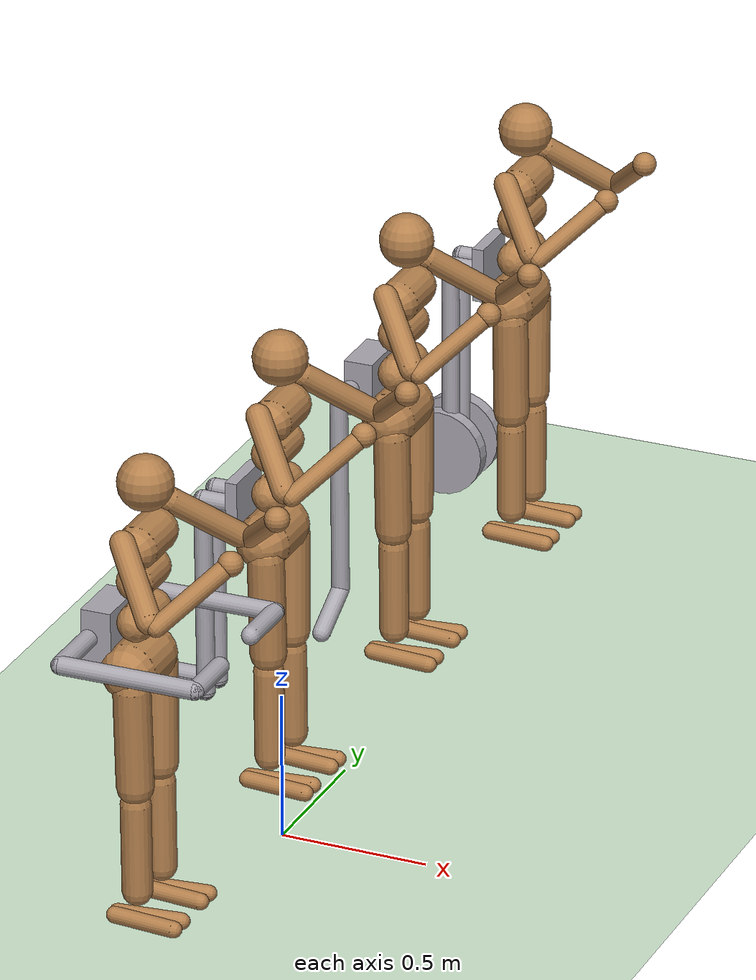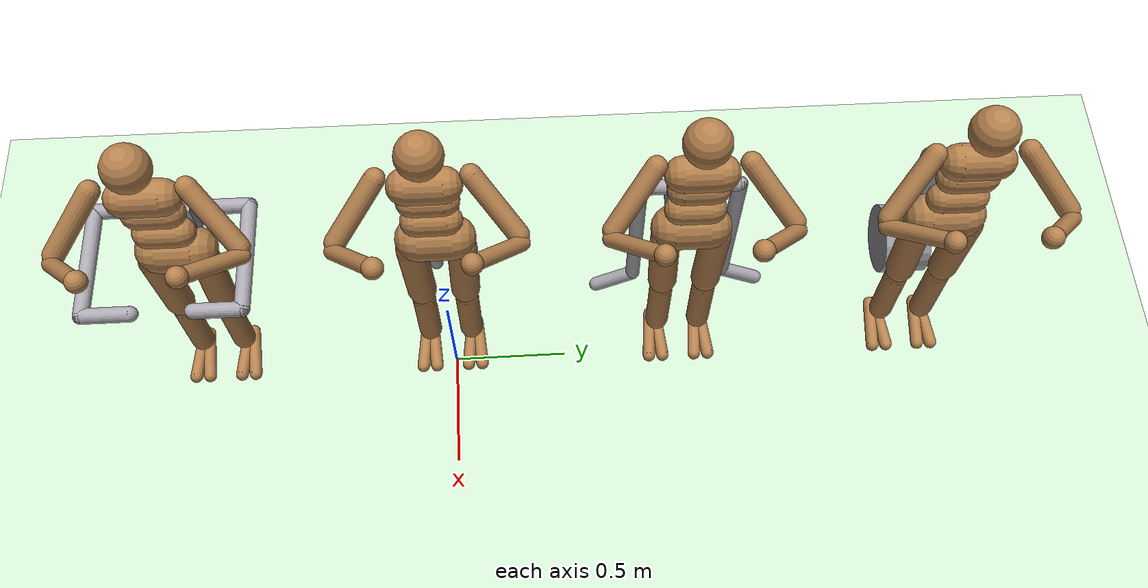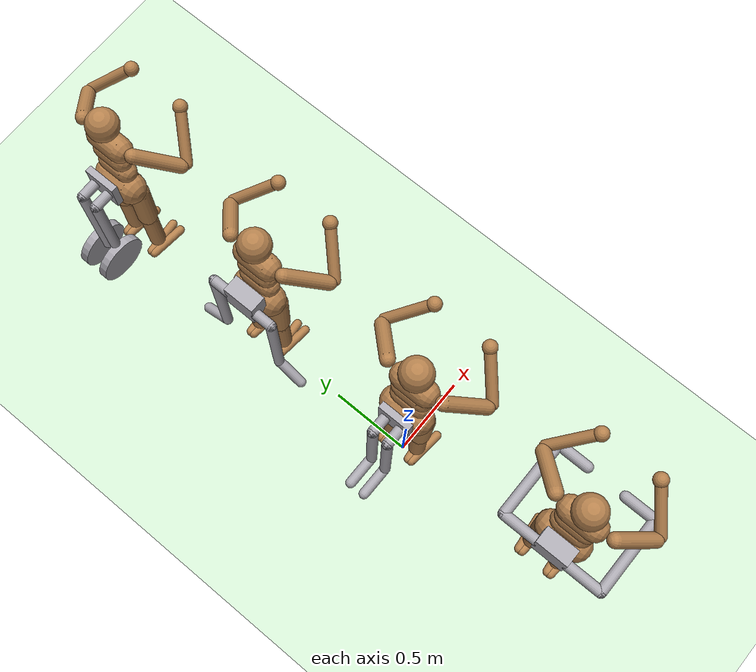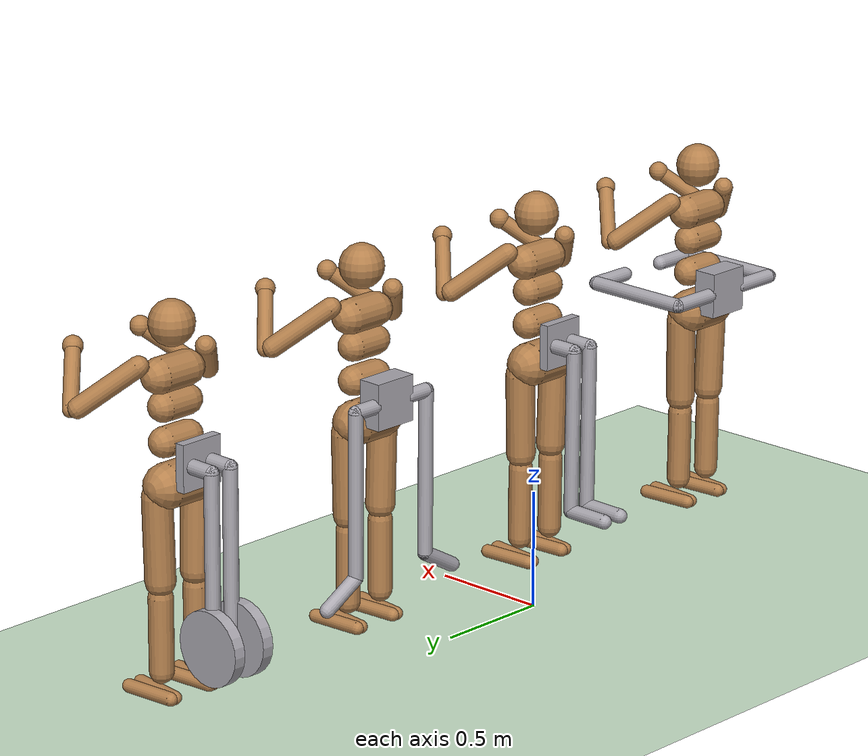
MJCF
<mujoco model="humanoid">

  <statistic extent="2" center="0 0 1"/>

  <option timestep="0.00555" gravity="0 0 0"/>
  <asset>
    <texture builtin="gradient" height="100" rgb1="1 1 1" rgb2="0.8 0.8 0.8" type="skybox" width="100"/>
    <texture builtin="flat" height="1278" mark="cross" markrgb="1 1 1" name="texgeom" random="0.01" rgb1="0.8 0.6 0.4" rgb2="0.8 0.6 0.4" type="cube" width="127"/>
    <material name="self" rgba=".7 .5 .3 1"/>
    <material name="SRL" rgba=".66 .65 .68 1"/>
	<texture builtin="checker" height="100" name="texplane" rgb1="0.5 0.5 0.6" rgb2="0.8 0.8 0.8" type="2d" width="100"/>
    <material name="MatPlane" reflectance="0.5" shininess="1" specular="1" texrepeat="60 60" texture="texplane"/>
  </asset>
  <default>
    <motor ctrlrange="-1 1" ctrllimited="true"/>
    <default class="body">
      <geom  type="capsule" condim="1" friction="1.0 0.05 0.05" solimp=".9 .99 .003" solref=".015 1" material="self"/>
      <joint type="hinge" damping="0.1" stiffness="5" armature=".007" limited="true" solimplimit="0 .99 .01"/>
      <default class="small_joint">
        <joint damping="1.0" stiffness="2" armature=".006"/>
      </default>
      <default class="big_joint">
        <joint damping="5" stiffness="10" armature=".01"/>
      </default>
      <default class="bigger_stiff_joint">
        <joint damping="5" stiffness="20" armature=".01"/>
      </default>
      <default class="big_stiff_joint">
        <joint damping="5" stiffness="20" armature=".02"/>
      </default>
      <site size=".04" group="3"/>
      <default class="force-torque">
        <site type="box" size=".01 .01 .02" rgba="1 0 0 1" />
      </default>
      <default class="touch">
        <site type="capsule" rgba="0 0 1 .3"/>
      </default>
    </default>
  </default>

  <worldbody>
    <light cutoff="100" diffuse="1 1 1" dir="0 0 -1.3" directional="true" exponent="1" pos="5 0 2" specular="0.1 0.1 0.1"/>
    <geom conaffinity="1" condim="3" material="MatPlane" name="floor" pos="0 0 0" rgba="0.8 0.9 0.8 1" size="40 40 40" type="plane"/>
    <body name="torso" pos="0 0 1.5" childclass="body">
      <camera name="back" pos="-3 0 1" xyaxes="0 -1 0 1 0 2" mode="trackcom"/>
      <camera name="side" pos="0 -3 1" xyaxes="1 0 0 0 1 2" mode="trackcom"/>
      <freejoint name="root"/>
      <site name="root" class="force-torque"/>
      <geom name="torso" fromto="0 -.07 0 0 .07 0" size=".07"/>
      <geom name="upper_waist" fromto="-.01 -.06 -.12 -.01 .06 -.12" size=".06"/>
      <site name="torso" class="touch" type="box" pos="0 0 -.05" size=".075 .14 .13"/>

      <body name="head" pos="0 0 .19">
        <geom name="head" type="sphere" size=".09"/>
        <site name="head" class="touch" type="sphere" size=".091"/>
        <camera name="egocentric" pos=".09 0 0" xyaxes="0 -1 0 .1 0 1" fovy="80"/>
      </body>
      <body name="lower_waist" pos="-.01 0 -.260" quat="1.000 0 -.002 0">
        <geom name="lower_waist" fromto="0 -.06 0 0 .06 0" size=".06"/>
        <site name="lower_waist" class="touch" size=".061 .06" zaxis="0 1 0"/>
        <joint name="abdomen_z" pos="0 0 .065" axis="0 0 1" range="-45 45" class="big_stiff_joint"/>
        <joint name="abdomen_y" pos="0 0 .065" axis="0 1 0" range="-75 30" class="bigger_stiff_joint"/>
        <body name="pelvis" pos="0 0 -.165" quat="1.000 0 -.002 0">
          <joint name="abdomen_x" pos="0 0 .1" axis="1 0 0" range="-35 35" class="big_joint"/>
          <geom name="butt" fromto="-.02 -.07 0 -.02 .07 0" size=".09"/>
          <site name="butt" class="touch" size=".091 .07" pos="-.02 0 0" zaxis="0 1 0"/>
	   	<body name="SRL_1" pos="-0.12 0 0.1" quat="0.0 0.0 0.0 1.0">
			<geom material="SRL" name="geomroot" pos="0 0 0" size="0.02 0.095 0.095" type="box"/>
			<body name="leg2" pos="0.02 0.0475 0" quat="1.0 0.0 0.0 0.0">
				<geom fromto="0 0 0 0.1 0 0" material="SRL" name="geomleg2" size="0.03" type="capsule"/>
				<joint axis="0 0 1" name="joint_joint11" pos="0 0 0" range="-45 45" type="hinge"/>
				<joint axis="0 1 0" name="joint_joint12" pos="0 0 0" range="-45 45" type="hinge"/>
				<body name="shin11" pos="0.1 0 0" quat="0.70711 0.0 0.70711 0.0">
					<geom fromto="0 0 0 0.68 0 0" material="SRL" name="geomshin11" size="0.03" type="capsule"/>
					<joint axis="0 1 0" name="joint_joint13" pos="0 0 0" range="-45 45" type="hinge"/>
					<body name="shin12" pos="0.68 0 0" quat="0.70711 0.0 -0.70711 0.0">
						<geom fromto="0 0 0 0.18 0 0" material="SRL" name="geomshin12" size="0.03" type="capsule"/>
						<joint axis="0 1 0" name="joint_joint14" pos="0 0 0" range="-45 45" type="hinge"/>
					</body>
				</body>
			</body>
			<body name="leg1" pos="0.02 -0.0475 0" quat="1.0 0.0 0.0 0.0">
				<geom fromto="0 0 0 0.1 0 0" material="SRL" name="geomleg1" size="0.03" type="capsule"/>
				<joint axis="0 0 1" name="joint_joint01" pos="0 0 0" range="-45 45" type="hinge"/>
				<joint axis="0 1 0" name="joint_joint02" pos="0 0 0" range="-45 45" type="hinge"/>
				<body name="shin1" pos="0.1 0 0" quat="0.70711 0.0 0.70711 0.0">
					<geom fromto="0 0 0 0.68 0 0" material="SRL" name="geomshin1" size="0.03" type="capsule"/>
					<joint axis="0 1 0" name="joint_joint1" pos="0 0 0" range="-45 45" type="hinge"/>
					<body name="shin2" pos="0.68 0 0" quat="0.70711 0.0 -0.70711 0.0">
						<geom fromto="0 0 0 0.18 0 0" material="SRL" name="geomshin2" size="0.03" type="capsule"/>
						<joint axis="0 1 0" name="joint_joint2" pos="0 0 0" range="-45 45" type="hinge"/>
					</body>
				</body>
			</body>
		  </body>
          <body name="right_thigh" pos="0 -.1 -.04">
            <site name="right_hip" class="force-torque"/>
            <joint name="right_hip_x" axis="1 0 0" range="-45 15" class="big_joint"/>
            <joint name="right_hip_z" axis="0 0 1" range="-60 35" class="big_joint"/>
            <joint name="right_hip_y" axis="0 1 0" range="-120 45" class="bigger_stiff_joint"/>
            <geom name="right_thigh" fromto="0 0 0 0 .01 -.34" size=".06"/>
            <site name="right_thigh" class="touch" pos="0 .005 -.17" size=".061 .17" zaxis="0 -1 34"/>
            <body name="right_shin" pos="0 .01 -.403">
              <site name="right_knee" class="force-torque" pos="0 0 .02"/>
              <joint name="right_knee" pos="0 0 .02" axis="0 -1 0" range="-160 2"/>
              <geom name="right_shin" fromto="0 0 0 0 0 -.3"  size=".049"/>
              <site name="right_shin" class="touch" pos="0 0 -.15" size=".05 .15"/>
              <body name="right_foot" pos="0 0 -.39">
                <site name="right_ankle" class="force-torque"/>
                <joint name="right_ankle_y" pos="0 0 .08" axis="0 1 0" range="-50 50" class="small_joint"/>
                <joint name="right_ankle_x" pos="0 0 .08" axis="1 0 .5" range="-50 50" class="small_joint"/>
                <geom name="right_right_foot" fromto="-.07 -.02 0 .14 -.04 0" size=".027"/>
                <geom name="left_right_foot" fromto="-.07 0 0 .14  .02 0" size=".027"/>
                <site name="right_right_foot" class="touch" pos=".035 -.03 0" size=".03 .11" zaxis="21 -2 0"/>
                <site name="left_right_foot" class="touch" pos=".035 .01 0" size=".03 .11" zaxis="21 2 0"/>
              </body>
            </body>
          </body>
          <body name="left_thigh" pos="0 .1 -.04">
            <site name="left_hip" class="force-torque"/>
            <joint name="left_hip_x" axis="-1 0 0" range="-45 15" class="big_joint"/>
            <joint name="left_hip_z" axis="0 0 -1" range="-60 35" class="big_joint"/>
            <joint name="left_hip_y" axis="0 1 0" range="-120 45" class="bigger_stiff_joint"/>
            <geom name="left_thigh" fromto="0 0 0 0 -.01 -.34" size=".06"/>
            <site name="left_thigh" class="touch" pos="0 -.005 -.17" size=".061 .17" zaxis="0 1 34"/>
            <body name="left_shin" pos="0 -.01 -.403">
              <site name="left_knee" class="force-torque" pos="0 0 .02"/>
              <joint name="left_knee" pos="0 0 .02" axis="0 -1 0" range="-160 2"/>
              <geom name="left_shin" fromto="0 0 0 0 0 -.3"  size=".049"/>
              <site name="left_shin" class="touch"  pos="0 0 -.15" size=".05 .15"/>
              <body name="left_foot" pos="0 0 -.39">
                <site name="left_ankle" class="force-torque"/>
                <joint name="left_ankle_y" pos="0 0 .08" axis="0 1 0" range="-50 50" class="small_joint"/>
                <joint name="left_ankle_x" pos="0 0 .08" axis="1 0 .5" range="-50 50" class="small_joint"/>
                <geom name="left_left_foot" fromto="-.07 .02 0 .14 .04 0" size=".027"/>
                <geom name="right_left_foot" fromto="-.07 0 0 .14  -.02 0" size=".027"/>
                <site name="right_left_foot" class="touch" pos=".035 -.01 0" size=".03 .11" zaxis="21 -2 0"/>
                <site name="left_left_foot" class="touch" pos=".035 .03 0" size=".03 .11" zaxis="21 2 0"/>
              </body>
            </body>
          </body>
        </body>
      </body>
      <body name="right_upper_arm" pos="0 -.17 .06">
        <joint name="right_shoulder1" axis="2 1 1"  range="-90 70" class="big_joint"/>
        <joint name="right_shoulder2" axis="0 -1 1" range="-90 70" class="big_joint"/>
        <geom name="right_upper_arm" fromto="0 0 0 .16 -.16 -.16" size=".04 .16"/>
        <site name="right_upper_arm" class="touch" pos=".08 -.08 -.08" size=".041 .14" zaxis="1 -1 -1"/>
        <body name="right_lower_arm" pos=".18 -.18 -.18">
          <joint name="right_elbow" axis="0 -1 1" range="-90 50" class="small_joint"/>
          <geom name="right_lower_arm" fromto=".01 .01 .01 .17 .17 .17" size=".031"/>
          <site name="right_lower_arm" class="touch" pos=".09 .09 .09" size=".032 .14" zaxis="1 1 1"/>
          <body name="right_hand" pos=".18 .18 .18">
            <geom name="right_hand" type="sphere" size=".04"/>
            <site name="right_hand" class="touch" type="sphere" size=".041"/>
          </body>
        </body>
      </body>
      <body name="left_upper_arm" pos="0 .17 .06">
        <joint name="left_shoulder1" axis="-2 1 -1" range="-90 70" class="big_joint"/>
        <joint name="left_shoulder2" axis="0 -1 -1" range="-90 70" class="big_joint"/>
        <geom name="left_upper_arm" fromto="0 0 0 .16 .16 -.16" size=".04 .16"/>
        <site name="left_upper_arm" class="touch" pos=".08 .08 -.08" size=".041 .14" zaxis="1 1 -1"/>
        <body name="left_lower_arm" pos=".18 .18 -.18">
          <joint name="left_elbow" axis="0 -1 -1" range="-90 50" class="small_joint"/>
          <geom name="left_lower_arm" fromto=".01 -.01 .01 .17 -.17 .17" size=".031"/>
          <site name="left_lower_arm" class="touch" pos=".09 -.09 .09" size=".032 .14" zaxis="1 -1 1"/>
          <body name="left_hand" pos=".18 -.18 .18">
            <geom name="left_hand" type="sphere" size=".04"/>
            <site name="left_hand" class="touch" type="sphere" size=".041"/>
          </body>
        </body>
      </body>
    </body>
    <body name="torso2" pos="0 1.0 1.5" childclass="body">
      <camera name="2back" pos="-3 0 1" xyaxes="0 -1 0 1 0 2" mode="trackcom"/>
      <camera name="2side" pos="0 -3 1" xyaxes="1 0 0 0 1 2" mode="trackcom"/>
      <freejoint name="2root"/>
      <site name="2root" class="force-torque"/>
      <geom name="2torso" fromto="0 -.07 0 0 .07 0" size=".07"/>
      <geom name="2upper_waist" fromto="-.01 -.06 -.12 -.01 .06 -.12" size=".06"/>
      <site name="2torso" class="touch" type="box" pos="0 0 -.05" size=".075 .14 .13"/>

      <body name="2head2" pos="0 0 .19">
        <geom name="2head" type="sphere" size=".09"/>
        <site name="2head" class="touch" type="sphere" size=".091"/>
        <camera name="2egocentric" pos=".09 0 0" xyaxes="0 -1 0 .1 0 1" fovy="80"/>
      </body>
      <body name="2lower_waist2" pos="-.01 0 -.260" quat="1.000 0 -.002 0">
        <geom name="2lower_waist" fromto="0 -.06 0 0 .06 0" size=".06"/>
        <site name="2lower_waist" class="touch" size=".061 .06" zaxis="0 1 0"/>
        <joint name="2abdomen_z" pos="0 0 .065" axis="0 0 1" range="-45 45" class="big_stiff_joint"/>
        <joint name="2abdomen_y" pos="0 0 .065" axis="0 1 0" range="-75 30" class="bigger_stiff_joint"/>
        <body name="2pelvis2" pos="0 0 -.165" quat="1.000 0 -.002 0">
          <joint name="2abdomen_x" pos="0 0 .1" axis="1 0 0" range="-35 35" class="big_joint"/>
          <geom name="2butt" fromto="-.02 -.07 0 -.02 .07 0" size=".09"/>
          <site name="2butt" class="touch" size=".091 .07" pos="-.02 0 0" zaxis="0 1 0"/>
		 <body name="2SRL_2" pos="-0.12 0 0.1" quat="0.0 0.0 0.0 1.0">
			<geom material="SRL" name="2geomroot" pos="0 0 0" size="0.05 0.095 0.095" type="box"/>
			<body name="2leg2" pos="0.025 0.095 0" quat="0.70711 0.0 0.0 0.70711">
				<geom fromto="0 0 0 0.1 0 0" material="SRL" name="2geomleg2" size="0.03" type="capsule"/>
				<joint axis="0 0 1" name="2joint_joint11" pos="0 0 0" range="-45 45" type="hinge"/>
				<joint axis="0 1 0" name="2joint_joint12" pos="0 0 0" range="-45 45" type="hinge"/>
				<body name="2shin11" pos="0.1 0 0" quat="0.70711 0.0 0.70711 0.0">
					<geom fromto="0 0 0 0.68 0 0" material="SRL" name="2geomshin11" size="0.03" type="capsule"/>
					<joint axis="0 1 0" name="2joint_joint13" pos="0 0 0" range="-45 45" type="hinge"/>
					<body name="2shin12" pos="0.68 0 0" quat="0.86603 0.0 -0.5 0.0">
						<geom fromto="0 0 0 0.18 0 0" material="SRL" name="2geomshin12" size="0.03" type="capsule"/>
						<joint axis="0 1 0" name="2joint_joint14" pos="0 0 0" range="-45 45" type="hinge"/>
					</body>
				</body>
			</body>
			<body name="2leg1" pos="0.025 -0.095 0" quat="0.70711 0.0 0.0 -0.70711">
				<geom fromto="0 0 0 0.1 0 0" material="SRL" name="2geomleg1" size="0.03" type="capsule"/>
				<joint axis="0 0 1" name="2joint_joint01" pos="0 0 0" range="-45 45" type="hinge"/>
				<joint axis="0 1 0" name="2joint_joint02" pos="0 0 0" range="-45 45" type="hinge"/>
				<body name="2shin1" pos="0.1 0 0" quat="0.70711 0.0 0.70711 0.0">
					<geom fromto="0 0 0 0.68 0 0" material="SRL" name="2geomshin1" size="0.03" type="capsule"/>
					<joint axis="0 1 0" name="2joint_joint1" pos="0 0 0" range="-45 45" type="hinge"/>
					<body name="2shin2" pos="0.68 0 0" quat="0.86603 0.0 -0.5 0.0">
						<geom fromto="0 0 0 0.18 0 0" material="SRL" name="2geomshin2" size="0.03" type="capsule"/>
						<joint axis="0 1 0" name="2joint_joint2" pos="0 0 0" range="-45 45" type="hinge"/>
					</body>
				</body>
			</body>
		 </body>
          <body name="2right_thigh2" pos="0 -.1 -.04">
            <site name="2right_hip" class="force-torque"/>
            <joint name="2right_hip_x" axis="1 0 0" range="-45 15" class="big_joint"/>
            <joint name="2right_hip_z" axis="0 0 1" range="-60 35" class="big_joint"/>
            <joint name="2right_hip_y" axis="0 1 0" range="-120 45" class="bigger_stiff_joint"/>
            <geom name="2right_thigh" fromto="0 0 0 0 .01 -.34" size=".06"/>
            <site name="2right_thigh" class="touch" pos="0 .005 -.17" size=".061 .17" zaxis="0 -1 34"/>
            <body name="2right_shin2" pos="0 .01 -.403">
              <site name="2right_knee" class="force-torque" pos="0 0 .02"/>
              <joint name="2right_knee" pos="0 0 .02" axis="0 -1 0" range="-160 2"/>
              <geom name="2right_shin" fromto="0 0 0 0 0 -.3"  size=".049"/>
              <site name="2right_shin" class="touch" pos="0 0 -.15" size=".05 .15"/>
              <body name="2right_foot" pos="0 0 -.39">
                <site name="2right_ankle" class="force-torque"/>
                <joint name="2right_ankle_y" pos="0 0 .08" axis="0 1 0" range="-50 50" class="small_joint"/>
                <joint name="2right_ankle_x" pos="0 0 .08" axis="1 0 .5" range="-50 50" class="small_joint"/>
                <geom name="2right_right_foot" fromto="-.07 -.02 0 .14 -.04 0" size=".027"/>
                <geom name="2left_right_foot" fromto="-.07 0 0 .14  .02 0" size=".027"/>
                <site name="2right_right_foot" class="touch" pos=".035 -.03 0" size=".03 .11" zaxis="21 -2 0"/>
                <site name="2left_right_foot" class="touch" pos=".035 .01 0" size=".03 .11" zaxis="21 2 0"/>
              </body>
            </body>
          </body>
          <body name="2left_thigh" pos="0 .1 -.04">
            <site name="2left_hip" class="force-torque"/>
            <joint name="2left_hip_x" axis="-1 0 0" range="-45 15" class="big_joint"/>
            <joint name="2left_hip_z" axis="0 0 -1" range="-60 35" class="big_joint"/>
            <joint name="2left_hip_y" axis="0 1 0" range="-120 45" class="bigger_stiff_joint"/>
            <geom name="2left_thigh" fromto="0 0 0 0 -.01 -.34" size=".06"/>
            <site name="2left_thigh" class="touch" pos="0 -.005 -.17" size=".061 .17" zaxis="0 1 34"/>
            <body name="2left_shin" pos="0 -.01 -.403">
              <site name="2left_knee" class="force-torque" pos="0 0 .02"/>
              <joint name="2left_knee" pos="0 0 .02" axis="0 -1 0" range="-160 2"/>
              <geom name="2left_shin" fromto="0 0 0 0 0 -.3"  size=".049"/>
              <site name="2left_shin" class="touch"  pos="0 0 -.15" size=".05 .15"/>
              <body name="2left_foot" pos="0 0 -.39">
                <site name="2left_ankle" class="force-torque"/>
                <joint name="2left_ankle_y" pos="0 0 .08" axis="0 1 0" range="-50 50" class="small_joint"/>
                <joint name="2left_ankle_x" pos="0 0 .08" axis="1 0 .5" range="-50 50" class="small_joint"/>
                <geom name="2left_left_foot" fromto="-.07 .02 0 .14 .04 0" size=".027"/>
                <geom name="2right_left_foot" fromto="-.07 0 0 .14  -.02 0" size=".027"/>
                <site name="2right_left_foot" class="touch" pos=".035 -.01 0" size=".03 .11" zaxis="21 -2 0"/>
                <site name="2left_left_foot" class="touch" pos=".035 .03 0" size=".03 .11" zaxis="21 2 0"/>
              </body>
            </body>
          </body>
        </body>
      </body>
      <body name="2right_upper_arm" pos="0 -.17 .06">
        <joint name="2right_shoulder1" axis="2 1 1"  range="-90 70" class="big_joint"/>
        <joint name="2right_shoulder2" axis="0 -1 1" range="-90 70" class="big_joint"/>
        <geom name="2right_upper_arm" fromto="0 0 0 .16 -.16 -.16" size=".04 .16"/>
        <site name="2right_upper_arm" class="touch" pos=".08 -.08 -.08" size=".041 .14" zaxis="1 -1 -1"/>
        <body name="2right_lower_arm" pos=".18 -.18 -.18">
          <joint name="2right_elbow" axis="0 -1 1" range="-90 50" class="small_joint"/>
          <geom name="2right_lower_arm" fromto=".01 .01 .01 .17 .17 .17" size=".031"/>
          <site name="2right_lower_arm" class="touch" pos=".09 .09 .09" size=".032 .14" zaxis="1 1 1"/>
          <body name="2right_hand" pos=".18 .18 .18">
            <geom name="2right_hand" type="sphere" size=".04"/>
            <site name="2right_hand" class="touch" type="sphere" size=".041"/>
          </body>
        </body>
      </body>
      <body name="2left_upper_arm" pos="0 .17 .06">
        <joint name="2left_shoulder1" axis="-2 1 -1" range="-90 70" class="big_joint"/>
        <joint name="2left_shoulder2" axis="0 -1 -1" range="-90 70" class="big_joint"/>
        <geom name="2left_upper_arm" fromto="0 0 0 .16 .16 -.16" size=".04 .16"/>
        <site name="2left_upper_arm" class="touch" pos=".08 .08 -.08" size=".041 .14" zaxis="1 1 -1"/>
        <body name="2left_lower_arm" pos=".18 .18 -.18">
          <joint name="2left_elbow" axis="0 -1 -1" range="-90 50" class="small_joint"/>
          <geom name="2left_lower_arm" fromto=".01 -.01 .01 .17 -.17 .17" size=".031"/>
          <site name="2left_lower_arm" class="touch" pos=".09 -.09 .09" size=".032 .14" zaxis="1 -1 1"/>
          <body name="2left_hand" pos=".18 -.18 .18">
            <geom name="2left_hand" type="sphere" size=".04"/>
            <site name="2left_hand" class="touch" type="sphere" size=".041"/>
          </body>
        </body>
      </body>
    </body>
    <body name="3torso3" pos="0 -1.0 1.5" childclass="body">
      <camera name="3back" pos="-3 0 1" xyaxes="0 -1 0 1 0 2" mode="trackcom"/>
      <camera name="3side" pos="0 -3 1" xyaxes="1 0 0 0 1 2" mode="trackcom"/>
      <freejoint name="3root"/>
      <site name="3root" class="force-torque"/>
      <geom name="3torso" fromto="0 -.07 0 0 .07 0" size=".07"/>
      <geom name="3upper_waist" fromto="-.01 -.06 -.12 -.01 .06 -.12" size=".06"/>
      <site name="3torso" class="touch" type="box" pos="0 0 -.05" size=".075 .14 .13"/>

      <body name="3head" pos="0 0 .19">
        <geom name="3head" type="sphere" size=".09"/>
        <site name="3head" class="touch" type="sphere" size=".091"/>
        <camera name="3egocentric" pos=".09 0 0" xyaxes="0 -1 0 .1 0 1" fovy="80"/>
      </body>
      <body name="3lower_waist" pos="-.01 0 -.260" quat="1.000 0 -.002 0">
        <geom name="3lower_waist" fromto="0 -.06 0 0 .06 0" size=".06"/>
        <site name="3lower_waist" class="touch" size=".061 .06" zaxis="0 1 0"/>
        <joint name="3abdomen_z" pos="0 0 .065" axis="0 0 1" range="-45 45" class="big_stiff_joint"/>
        <joint name="3abdomen_y" pos="0 0 .065" axis="0 1 0" range="-75 30" class="bigger_stiff_joint"/>
        <body name="3pelvis" pos="0 0 -.165" quat="1.000 0 -.002 0">
          <joint name="3abdomen_x" pos="0 0 .1" axis="1 0 0" range="-35 35" class="big_joint"/>
          <geom name="3butt" fromto="-.02 -.07 0 -.02 .07 0" size=".09"/>
          <site name="3butt" class="touch" size=".091 .07" pos="-.02 0 0" zaxis="0 1 0"/>
		 <body name="3SRL_3" pos="-0.120 0 0.1" quat="0.0 0.0 0.0 1.0">
			<geom material="SRL" name="3geomroot" pos="0 0 0" size="0.05 0.095 0.095" type="box"/>
			<body name="3leg2" pos="0.025 0.095 0" quat="0.70711 0.0 0.0 0.70711">
				<geom fromto="0 0 0 0.2 0 0" material="SRL" name="3geomleg2" size="0.03" type="capsule"/>
				<joint axis="0 0 1" name="3joint_joint11" pos="0 0 0" range="-45 45" type="hinge"/>
				<joint axis="0 1 0" name="3joint_joint12" pos="0 0 0" range="-45 45" type="hinge"/>
				<body name="3shin11" pos="0.2 0 0" quat="0.70711 0.0 0.0 0.70711">
					<geom fromto="0 0 0 0.45 0 0" material="SRL" name="3geomshin11" size="0.03" type="capsule"/>
					<joint axis="0 1 0" name="3joint_joint13" pos="0 0 0" range="-45 45" type="hinge"/>
					<body name="3shin12" pos="0.45 0 0" quat="0.70711 0.0 0.0 0.70711">
						<geom fromto="0 0 0 0.18 0 0" material="SRL" name="3geomshin12" size="0.03" type="capsule"/>
						<joint axis="0 1 0" name="3joint_joint14" pos="0 0 0" range="-45 45" type="hinge"/>
					</body>
				</body>
			</body>
			<body name="3leg1" pos="0.025 -0.095 0" quat="0.70711 0.0 0.0 -0.70711">
				<geom fromto="0 0 0 0.2 0 0" material="SRL" name="3geomleg1" size="0.03" type="capsule"/>
				<joint axis="0 0 1" name="3joint_joint01" pos="0 0 0" range="-45 45" type="hinge"/>
				<joint axis="0 1 0" name="3joint_joint02" pos="0 0 0" range="-45 45" type="hinge"/>
				<body name="3shin1" pos="0.2 0 0" quat="0.70711 0.0 0.0 -0.70711">
					<geom fromto="0 0 0 0.45 0 0" material="SRL" name="3geomshin1" size="0.03" type="capsule"/>
					<joint axis="0 1 0" name="3joint_joint1" pos="0 0 0" range="-45 45" type="hinge"/>
					<body name="3shin2" pos="0.45 0 0" quat="0.70711 0.0 0.0 -0.70711">
						<geom fromto="0 0 0 0.18 0 0" material="SRL" name="3geomshin2" size="0.03" type="capsule"/>
						<joint axis="0 1 0" name="3joint_joint2" pos="0 0 0" range="-45 45" type="hinge"/>
					</body>
				</body>
			</body>
	  	 </body>
          <body name="3right_thigh" pos="0 -.1 -.04">
            <site name="3right_hip" class="force-torque"/>
            <joint name="3right_hip_x" axis="1 0 0" range="-45 15" class="big_joint"/>
            <joint name="3right_hip_z" axis="0 0 1" range="-60 35" class="big_joint"/>
            <joint name="3right_hip_y" axis="0 1 0" range="-120 45" class="bigger_stiff_joint"/>
            <geom name="3right_thigh" fromto="0 0 0 0 .01 -.34" size=".06"/>
            <site name="3right_thigh" class="touch" pos="0 .005 -.17" size=".061 .17" zaxis="0 -1 34"/>
            <body name="3right_shin" pos="0 .01 -.403">
              <site name="3right_knee" class="force-torque" pos="0 0 .02"/>
              <joint name="3right_knee" pos="0 0 .02" axis="0 -1 0" range="-160 2"/>
              <geom name="3right_shin" fromto="0 0 0 0 0 -.3"  size=".049"/>
              <site name="3right_shin" class="touch" pos="0 0 -.15" size=".05 .15"/>
              <body name="3right_foot" pos="0 0 -.39">
                <site name="3right_ankle" class="force-torque"/>
                <joint name="3right_ankle_y" pos="0 0 .08" axis="0 1 0" range="-50 50" class="small_joint"/>
                <joint name="3right_ankle_x" pos="0 0 .08" axis="1 0 .5" range="-50 50" class="small_joint"/>
                <geom name="3right_right_foot" fromto="-.07 -.02 0 .14 -.04 0" size=".027"/>
                <geom name="3left_right_foot" fromto="-.07 0 0 .14  .02 0" size=".027"/>
                <site name="3right_right_foot" class="touch" pos=".035 -.03 0" size=".03 .11" zaxis="21 -2 0"/>
                <site name="3left_right_foot" class="touch" pos=".035 .01 0" size=".03 .11" zaxis="21 2 0"/>
              </body>
            </body>
          </body>
          <body name="3left_thigh" pos="0 .1 -.04">
            <site name="3left_hip" class="force-torque"/>
            <joint name="3left_hip_x" axis="-1 0 0" range="-45 15" class="big_joint"/>
            <joint name="3left_hip_z" axis="0 0 -1" range="-60 35" class="big_joint"/>
            <joint name="3left_hip_y" axis="0 1 0" range="-120 45" class="bigger_stiff_joint"/>
            <geom name="3left_thigh" fromto="0 0 0 0 -.01 -.34" size=".06"/>
            <site name="3left_thigh" class="touch" pos="0 -.005 -.17" size=".061 .17" zaxis="0 1 34"/>
            <body name="3left_shin" pos="0 -.01 -.403">
              <site name="3left_knee" class="force-torque" pos="0 0 .02"/>
              <joint name="3left_knee" pos="0 0 .02" axis="0 -1 0" range="-160 2"/>
              <geom name="3left_shin" fromto="0 0 0 0 0 -.3"  size=".049"/>
              <site name="3left_shin" class="touch"  pos="0 0 -.15" size=".05 .15"/>
              <body name="3left_foot" pos="0 0 -.39">
                <site name="3left_ankle" class="force-torque"/>
                <joint name="3left_ankle_y" pos="0 0 .08" axis="0 1 0" range="-50 50" class="small_joint"/>
                <joint name="3left_ankle_x" pos="0 0 .08" axis="1 0 .5" range="-50 50" class="small_joint"/>
                <geom name="3left_left_foot" fromto="-.07 .02 0 .14 .04 0" size=".027"/>
                <geom name="3right_left_foot" fromto="-.07 0 0 .14  -.02 0" size=".027"/>
                <site name="3right_left_foot" class="touch" pos=".035 -.01 0" size=".03 .11" zaxis="21 -2 0"/>
                <site name="3left_left_foot" class="touch" pos=".035 .03 0" size=".03 .11" zaxis="21 2 0"/>
              </body>
            </body>
          </body>
        </body>
      </body>
      <body name="3right_upper_arm" pos="0 -.17 .06">
        <joint name="3right_shoulder1" axis="2 1 1"  range="-90 70" class="big_joint"/>
        <joint name="3right_shoulder2" axis="0 -1 1" range="-90 70" class="big_joint"/>
        <geom name="3right_upper_arm" fromto="0 0 0 .16 -.16 -.16" size=".04 .16"/>
        <site name="3right_upper_arm" class="touch" pos=".08 -.08 -.08" size=".041 .14" zaxis="1 -1 -1"/>
        <body name="3right_lower_arm" pos=".18 -.18 -.18">
          <joint name="3right_elbow" axis="0 -1 1" range="-90 50" class="small_joint"/>
          <geom name="3right_lower_arm" fromto=".01 .01 .01 .17 .17 .17" size=".031"/>
          <site name="3right_lower_arm" class="touch" pos=".09 .09 .09" size=".032 .14" zaxis="1 1 1"/>
          <body name="3right_hand" pos=".18 .18 .18">
            <geom name="3right_hand" type="sphere" size=".04"/>
            <site name="3right_hand" class="touch" type="sphere" size=".041"/>
          </body>
        </body>
      </body>
      <body name="3left_upper_arm" pos="0 .17 .06">
        <joint name="3left_shoulder1" axis="-2 1 -1" range="-90 70" class="big_joint"/>
        <joint name="3left_shoulder2" axis="0 -1 -1" range="-90 70" class="big_joint"/>
        <geom name="3left_upper_arm" fromto="0 0 0 .16 .16 -.16" size=".04 .16"/>
        <site name="3left_upper_arm" class="touch" pos=".08 .08 -.08" size=".041 .14" zaxis="1 1 -1"/>
        <body name="3left_lower_arm" pos=".18 .18 -.18">
          <joint name="3left_elbow" axis="0 -1 -1" range="-90 50" class="small_joint"/>
          <geom name="3left_lower_arm" fromto=".01 -.01 .01 .17 -.17 .17" size=".031"/>
          <site name="3left_lower_arm" class="touch" pos=".09 -.09 .09" size=".032 .14" zaxis="1 -1 1"/>
          <body name="3left_hand" pos=".18 -.18 .18">
            <geom name="3left_hand" type="sphere" size=".04"/>
            <site name="3left_hand" class="touch" type="sphere" size=".041"/>
          </body>
        </body>
      </body>
    </body>
    <body name="4torso" pos="0 2.0 1.5" childclass="body">
      <camera name="4back" pos="-3 0 1" xyaxes="0 -1 0 1 0 2" mode="trackcom"/>
      <camera name="4side" pos="0 -3 1" xyaxes="1 0 0 0 1 2" mode="trackcom"/>
      <freejoint name="4root"/>
      <site name="4root" class="force-torque"/>
      <geom name="4torso" fromto="0 -.07 0 0 .07 0" size=".07"/>
      <geom name="4upper_waist" fromto="-.01 -.06 -.12 -.01 .06 -.12" size=".06"/>
      <site name="4torso" class="touch" type="box" pos="0 0 -.05" size=".075 .14 .13"/>

      <body name="4head" pos="0 0 .19">
        <geom name="4head" type="sphere" size=".09"/>
        <site name="4head" class="touch" type="sphere" size=".091"/>
        <camera name="4egocentric" pos=".09 0 0" xyaxes="0 -1 0 .1 0 1" fovy="80"/>
      </body>
      <body name="4lower_waist" pos="-.01 0 -.260" quat="1.000 0 -.002 0">
        <geom name="4lower_waist" fromto="0 -.06 0 0 .06 0" size=".06"/>
        <site name="4lower_waist" class="touch" size=".061 .06" zaxis="0 1 0"/>
        <joint name="4abdomen_z" pos="0 0 .065" axis="0 0 1" range="-45 45" class="big_stiff_joint"/>
        <joint name="4abdomen_y" pos="0 0 .065" axis="0 1 0" range="-75 30" class="bigger_stiff_joint"/>
        <body name="4pelvis" pos="0 0 -.165" quat="1.000 0 -.002 0">
          <joint name="4abdomen_x" pos="0 0 .1" axis="1 0 0" range="-35 35" class="big_joint"/>
          <geom name="4butt" fromto="-.02 -.07 0 -.02 .07 0" size=".09"/>
          <site name="4butt" class="touch" size=".091 .07" pos="-.02 0 0" zaxis="0 1 0"/>
	    <body name="4SRL_1" pos="-0.12 0 0.1" quat="0.0 0.0 0.0 1.0">
		   <geom material="SRL" name="4geomroot" pos="0 0 0" size="0.02 0.095 0.095" type="box"/>
			 <body name="4leg2" pos="0.02 0.0475 0" quat="1.0 0.0 0.0 0.0">
				<geom fromto="0 0 0 0.1 0 0" material="SRL" name="4geomleg2" size="0.03" type="capsule"/>
				<joint axis="0 0 1" name="4joint_joint11" pos="0 0 0" range="-45 45" type="hinge"/>
				<joint axis="0 1 0" name="4joint_joint12" pos="0 0 0" range="-45 45" type="hinge"/>
				<body name="4shin11" pos="0.1 0 0" quat="0.70711 0.0 0.70711 0.0">
					<geom fromto="0 0 0 0.68 0 0" material="SRL" name="4geomshin11" size="0.03" type="capsule"/>
					<joint axis="0 1 0" name="4joint_joint13" pos="0 0 0" range="-45 45" type="hinge"/>
					<body name="4shin12" pos="0.68 0 0" quat="0.70711 0.0 -0.70711 0.0">
						<geom fromto="0.02 0 0 0.02 0.05 0" material="SRL" name="4geomshin111" size="0.15" type="cylinder"/>
						<joint axis="0 1 0" name="4joint_joint14" pos="0 0 0" range="-45 45" type="hinge"/>
					</body>
				</body>
			</body>
			<body name="4leg1" pos="0.02 -0.0475 0" quat="1.0 0.0 0.0 0.0">
				<geom fromto="0 0 0 0.1 0 0" material="SRL" name="4geomleg1" size="0.03" type="capsule"/>
				<joint axis="0 0 1" name="4joint_joint01" pos="0 0 0" range="-45 45" type="hinge"/>
				<joint axis="0 1 0" name="4joint_joint02" pos="0 0 0" range="-45 45" type="hinge"/>
				<body name="4shin1" pos="0.1 0 0" quat="0.70711 0.0 0.70711 0.0">
					<geom fromto="0 0 0 0.68 0 0" material="SRL" name="4geomshin1" size="0.03" type="capsule"/>
					<joint axis="0 1 0" name="4joint_joint1" pos="0 0 0" range="-45 45" type="hinge"/>
					<body name="4shin2" pos="0.68 0 0" quat="0.70711 0.0 -0.70711 0.0">
						<geom fromto="0.02 0 0 0.02 -0.05 0" material="SRL" name="4geomshin2" size="0.15" type="cylinder"/>
						<joint axis="0 1 0" name="4joint_joint2" pos="0 0 0" range="-45 45" type="hinge"/>
					</body>
				</body>
			</body>
		  </body>
          <body name="4right_thigh" pos="0 -.1 -.04">
            <site name="4right_hip" class="force-torque"/>
            <joint name="4right_hip_x" axis="1 0 0" range="-45 15" class="big_joint"/>
            <joint name="4right_hip_z" axis="0 0 1" range="-60 35" class="big_joint"/>
            <joint name="4right_hip_y" axis="0 1 0" range="-120 45" class="bigger_stiff_joint"/>
            <geom name="4right_thigh" fromto="0 0 0 0 .01 -.34" size=".06"/>
            <site name="4right_thigh" class="touch" pos="0 .005 -.17" size=".061 .17" zaxis="0 -1 34"/>
            <body name="4right_shin" pos="0 .01 -.403">
              <site name="4right_knee" class="force-torque" pos="0 0 .02"/>
              <joint name="4right_knee" pos="0 0 .02" axis="0 -1 0" range="-160 2"/>
              <geom name="4right_shin" fromto="0 0 0 0 0 -.3"  size=".049"/>
              <site name="4right_shin" class="touch" pos="0 0 -.15" size=".05 .15"/>
              <body name="4right_foot" pos="0 0 -.39">
                <site name="4right_ankle" class="force-torque"/>
                <joint name="4right_ankle_y" pos="0 0 .08" axis="0 1 0" range="-50 50" class="small_joint"/>
                <joint name="4right_ankle_x" pos="0 0 .08" axis="1 0 .5" range="-50 50" class="small_joint"/>
                <geom name="4right_right_foot" fromto="-.07 -.02 0 .14 -.04 0" size=".027"/>
                <geom name="4left_right_foot" fromto="-.07 0 0 .14  .02 0" size=".027"/>
                <site name="4right_right_foot" class="touch" pos=".035 -.03 0" size=".03 .11" zaxis="21 -2 0"/>
                <site name="4left_right_foot" class="touch" pos=".035 .01 0" size=".03 .11" zaxis="21 2 0"/>
              </body>
            </body>
          </body>
          <body name="4left_thigh" pos="0 .1 -.04">
            <site name="4left_hip" class="force-torque"/>
            <joint name="4left_hip_x" axis="-1 0 0" range="-45 15" class="big_joint"/>
            <joint name="4left_hip_z" axis="0 0 -1" range="-60 35" class="big_joint"/>
            <joint name="4left_hip_y" axis="0 1 0" range="-120 45" class="bigger_stiff_joint"/>
            <geom name="4left_thigh" fromto="0 0 0 0 -.01 -.34" size=".06"/>
            <site name="4left_thigh" class="touch" pos="0 -.005 -.17" size=".061 .17" zaxis="0 1 34"/>
            <body name="4left_shin" pos="0 -.01 -.403">
              <site name="4left_knee" class="force-torque" pos="0 0 .02"/>
              <joint name="4left_knee" pos="0 0 .02" axis="0 -1 0" range="-160 2"/>
              <geom name="4left_shin" fromto="0 0 0 0 0 -.3"  size=".049"/>
              <site name="4left_shin" class="touch"  pos="0 0 -.15" size=".05 .15"/>
              <body name="4left_foot" pos="0 0 -.39">
                <site name="4left_ankle" class="force-torque"/>
                <joint name="4left_ankle_y" pos="0 0 .08" axis="0 1 0" range="-50 50" class="small_joint"/>
                <joint name="4left_ankle_x" pos="0 0 .08" axis="1 0 .5" range="-50 50" class="small_joint"/>
                <geom name="4left_left_foot" fromto="-.07 .02 0 .14 .04 0" size=".027"/>
                <geom name="4right_left_foot" fromto="-.07 0 0 .14  -.02 0" size=".027"/>
                <site name="4right_left_foot" class="touch" pos=".035 -.01 0" size=".03 .11" zaxis="21 -2 0"/>
                <site name="4left_left_foot" class="touch" pos=".035 .03 0" size=".03 .11" zaxis="21 2 0"/>
              </body>
            </body>
          </body>
        </body>
      </body>
      <body name="4right_upper_arm" pos="0 -.17 .06">
        <joint name="4right_shoulder1" axis="2 1 1"  range="-90 70" class="big_joint"/>
        <joint name="4right_shoulder2" axis="0 -1 1" range="-90 70" class="big_joint"/>
        <geom name="4right_upper_arm" fromto="0 0 0 .16 -.16 -.16" size=".04 .16"/>
        <site name="4right_upper_arm" class="touch" pos=".08 -.08 -.08" size=".041 .14" zaxis="1 -1 -1"/>
        <body name="4right_lower_arm" pos=".18 -.18 -.18">
          <joint name="4right_elbow" axis="0 -1 1" range="-90 50" class="small_joint"/>
          <geom name="4right_lower_arm" fromto=".01 .01 .01 .17 .17 .17" size=".031"/>
          <site name="4right_lower_arm" class="touch" pos=".09 .09 .09" size=".032 .14" zaxis="1 1 1"/>
          <body name="4right_hand" pos=".18 .18 .18">
            <geom name="4right_hand" type="sphere" size=".04"/>
            <site name="4right_hand" class="touch" type="sphere" size=".041"/>
          </body>
        </body>
      </body>
      <body name="4left_upper_arm" pos="0 .17 .06">
        <joint name="4left_shoulder1" axis="-2 1 -1" range="-90 70" class="big_joint"/>
        <joint name="4left_shoulder2" axis="0 -1 -1" range="-90 70" class="big_joint"/>
        <geom name="4left_upper_arm" fromto="0 0 0 .16 .16 -.16" size=".04 .16"/>
        <site name="4left_upper_arm" class="touch" pos=".08 .08 -.08" size=".041 .14" zaxis="1 1 -1"/>
        <body name="4left_lower_arm" pos=".18 .18 -.18">
          <joint name="4left_elbow" axis="0 -1 -1" range="-90 50" class="small_joint"/>
          <geom name="4left_lower_arm" fromto=".01 -.01 .01 .17 -.17 .17" size=".031"/>
          <site name="4left_lower_arm" class="touch" pos=".09 -.09 .09" size=".032 .14" zaxis="1 -1 1"/>
          <body name="4left_hand" pos=".18 -.18 .18">
            <geom name="4left_hand" type="sphere" size=".04"/>
            <site name="4left_hand" class="touch" type="sphere" size=".041"/>
          </body>
        </body>
      </body>
    </body>
  </worldbody>

  <sensor>
    <subtreelinvel name="torso_subtreelinvel" body="torso"/>
    <accelerometer name="torso_accel"    site="root"/>
    <velocimeter name="torso_vel"        site="root"/>
    <gyro name="torso_gyro"              site="root"/>

    <force name="left_ankle_force"       site="left_ankle"/>
    <force name="right_ankle_force"      site="right_ankle"/>
    <force name="left_knee_force"        site="left_knee"/>
    <force name="right_knee_force"       site="right_knee"/>
    <force name="left_hip_force"         site="left_hip"/>
    <force name="right_hip_force"        site="right_hip"/>

    <torque name="left_ankle_torque"     site="left_ankle"/>
    <torque name="right_ankle_torque"    site="right_ankle"/>
    <torque name="left_knee_torque"      site="left_knee"/>
    <torque name="right_knee_torque"     site="right_knee"/>
    <torque name="left_hip_torque"       site="left_hip"/>
    <torque name="right_hip_torque"      site="right_hip"/>

    <touch name="torso_touch"            site="torso"/>
    <touch name="head_touch"             site="head"/>
    <touch name="lower_waist_touch"      site="lower_waist"/>
    <touch name="butt_touch"             site="butt"/>
    <touch name="right_thigh_touch"      site="right_thigh"/>
    <touch name="right_shin_touch"       site="right_shin"/>
    <touch name="right_right_foot_touch" site="right_right_foot"/>
    <touch name="left_right_foot_touch"  site="left_right_foot"/>
    <touch name="left_thigh_touch"       site="left_thigh"/>
    <touch name="left_shin_touch"        site="left_shin"/>
    <touch name="right_left_foot_touch"  site="right_left_foot"/>
    <touch name="left_left_foot_touch"   site="left_left_foot"/>
    <touch name="right_upper_arm_touch"  site="right_upper_arm"/>
    <touch name="right_lower_arm_touch"  site="right_lower_arm"/>
    <touch name="right_hand_touch"       site="right_hand"/>
    <touch name="left_upper_arm_touch"   site="left_upper_arm"/>
    <touch name="left_lower_arm_touch"   site="left_lower_arm"/>
    <touch name="left_hand_touch"        site="left_hand"/>
  </sensor>

</mujoco>
